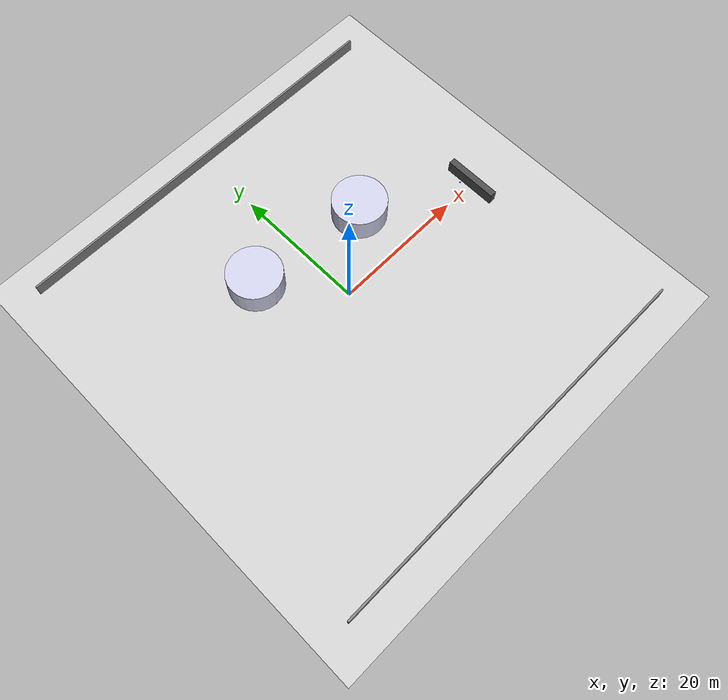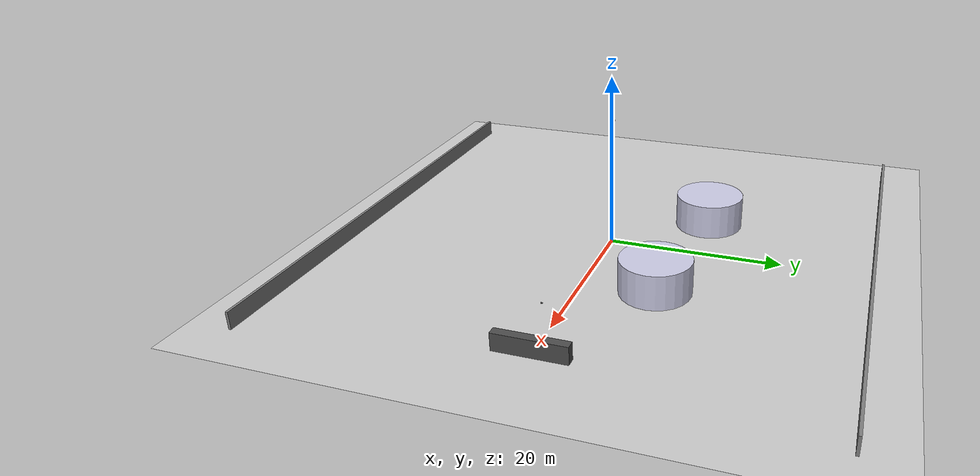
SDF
<sdf version="1.6">
 <world name="lng_terminal">
  <plugin name="gazebo_ros_state" filename="libgazebo_ros_state.so"/>
  <include><uri>model://ground_plane</uri></include>
  <include><uri>model://sun</uri></include>
  <model name="perimeter_north">
   <static>true</static>
   <pose>0 30 1 0 0 0</pose>
   <link name="wall">
    <collision name="col"><geometry><box><size>60 0.3 2</size></box></geometry></collision>
    <visual name="vis">
     <geometry><box><size>60 0.3 2</size></box></geometry>
     <material><ambient>0.5 0.5 0.5 1</ambient></material>
    </visual>
   </link>
  </model>
  <model name="perimeter_south">
   <static>true</static>
   <pose>0 -30 1 0 0 0</pose>
   <link name="wall">
    <collision name="col"><geometry><box><size>60 0.3 2</size></box></geometry></collision>
    <visual name="vis">
     <geometry><box><size>60 0.3 2</size></box></geometry>
     <material><ambient>0.5 0.5 0.5 1</ambient></material>
    </visual>
   </link>
  </model>
  <model name="tank_a">
   <static>true</static>
   <pose>10 8 2 0 0 0</pose>
   <link name="body">
    <collision name="col">
     <geometry><cylinder><radius>4</radius><length>4</length></cylinder></geometry>
    </collision>
    <visual name="vis">
     <geometry><cylinder><radius>4</radius><length>4</length></cylinder></geometry>
     <material><ambient>0.8 0.8 0.9 1</ambient></material>
    </visual>
   </link>
  </model>
  <model name="tank_b">
   <static>true</static>
   <pose>-8 10 2 0 0 0</pose>
   <link name="body">
    <collision name="col">
     <geometry><cylinder><radius>4</radius><length>4</length></cylinder></geometry>
    </collision>
    <visual name="vis">
     <geometry><cylinder><radius>4</radius><length>4</length></cylinder></geometry>
     <material><ambient>0.8 0.8 0.9 1</ambient></material>
    </visual>
   </link>
  </model>
  <model name="gate_structure">
   <static>true</static>
   <pose>25 0 1 0 0 0</pose>
   <link name="frame">
    <collision name="col"><geometry><box><size>1 8 2</size></box></geometry></collision>
    <visual name="vis">
     <geometry><box><size>1 8 2</size></box></geometry>
     <material><ambient>0.3 0.3 0.3 1</ambient></material>
    </visual>
   </link>
  </model>
  <model name="cctv_gate">
   <static>true</static>
   <pose>22 0 4 0 0.3 3.14</pose>
   <link name="body">
    <visual name="vis">
     <geometry><box><size>0.1 0.2 0.1</size></box></geometry>
     <material><ambient>0 0 0 1</ambient></material>
    </visual>
    <sensor name="cctv_cam" type="camera">
     <update_rate>2</update_rate>
     <camera>
      <horizontal_fov>1.3962634</horizontal_fov>
      <image><width>640</width><height>480</height><format>R8G8B8</format></image>
      <clip><near>0.1</near><far>100</far></clip>
     </camera>
     <plugin name="cctv_gate_plugin" filename="libgazebo_ros_camera.so">
      <ros><namespace>/cctv_gate</namespace><remapping>~/image_raw:=image_raw</remapping></ros>
      <camera_name>cctv_gate</camera_name>
      <frame_name>cctv_gate_frame</frame_name>
     </plugin>
    </sensor>
   </link>
  </model>
  <model name="gas_sensor_0">
   <static>true</static>
   <pose>-8 6 0.2 0 0 0</pose>
   <link name="body">
    <visual name="vis">
     <geometry><box><size>0.1 0.1 0.2</size></box></geometry>
     <material><ambient>1 0.5 0 1</ambient></material>
    </visual>
   </link>
   <plugin name="gas_sensor_plugin" filename="libgazebo_ros_ray_sensor.so">
    <ros><namespace>/gas_sensor_0</namespace></ros>
    <output_type>sensor_msgs/LaserScan</output_type>
    <frame_name>gas_sensor_0</frame_name>
   </plugin>
  </model>
  <model name="drone">
   <pose>0 0 15 0 0 0</pose>
   <link name="base_link">
    <inertial><mass>1.5</mass></inertial>
    <visual name="body_vis">
     <geometry><box><size>0.5 0.5 0.15</size></box></geometry>
     <material><ambient>0.1 0.1 0.1 1</ambient></material>
    </visual>
    <collision name="body_col"><geometry><box><size>0.5 0.5 0.15</size></box></geometry></collision>
    <sensor name="drone_cam" type="camera">
     <pose>0 0 -0.08 0 1.5707 0</pose>
     <update_rate>5</update_rate>
     <camera>
      <horizontal_fov>1.0472</horizontal_fov>
      <image><width>1280</width><height>720</height><format>R8G8B8</format></image>
      <clip><near>0.5</near><far>200</far></clip>
     </camera>
     <plugin name="drone_cam_plugin" filename="libgazebo_ros_camera.so">
      <ros><namespace>/drone_cam</namespace><remapping>~/image_raw:=image_raw</remapping></ros>
      <camera_name>drone_cam</camera_name>
      <frame_name>drone_cam_frame</frame_name>
     </plugin>
    </sensor>
   </link>
  </model>
 </world>
</sdf>
